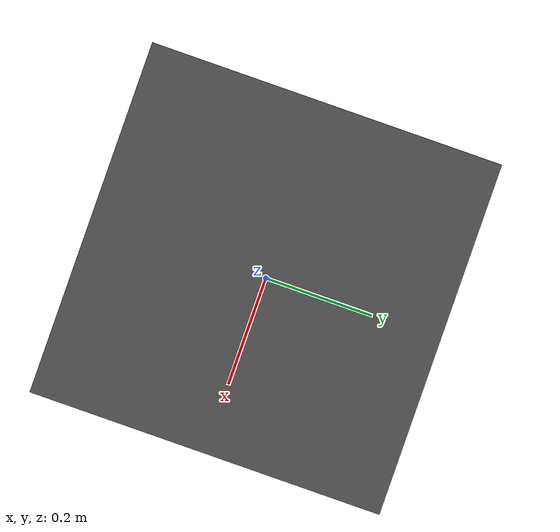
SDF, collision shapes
<sdf version='1.6'>
  <model name='omni_x8'>
    <link name='base_link'>
      <pose frame=''>0 0 0 0 -0 0</pose>
      <inertial>
        <pose frame=''>0 0 0 0 -0 0</pose>
        <mass>3.0</mass>
        <inertia>
          <ixx>0.045</ixx>
          <ixy>0</ixy>
          <ixz>0</ixz>
          <iyy>0.045</iyy>
          <iyz>0</iyz>
          <izz>0.1</izz>
        </inertia>
      </inertial>
      <collision name='base_link_inertia_collision'>
        <pose frame=''>0 0 0 0 -0 0</pose>
        <geometry>
          <box>
            <size>0.60 0.60 0.30</size>
          </box>
        </geometry>
        <surface>
          <friction>
            <ode>
              <mu>1</mu>
              <mu2>1</mu2>
            </ode>
          </friction>
          <contact>
            <ode>
              <kp>1e+8</kp>
              <kd>1</kd>
              <max_vel>0.01</max_vel>
              <min_depth>0.01</min_depth>
            </ode>
          </contact>
        </surface>
      </collision>
      <visual name='base_link_inertia_visual'>
        <pose frame=''>0 0 0 0 -0 0</pose>
        <geometry>
          <box>
            <size>0.4 0.1 0.1</size>
          </box>
        </geometry>
        <material>
          <script>
            <name>Gazebo/DarkGrey</name>
            <uri>file://media/materials/scripts/gazebo.material</uri>
          </script>
        </material>
      </visual>
      <visual name='arm_1_visual'>
        <pose>0 0 0 0 0 0.7854</pose>
        <geometry>
          <box>
            <size>0.6 0.01 0.01</size>
          </box>
        </geometry>
        <material>
          <script>
            <name>Gazebo/Red</name>
            <uri>__default__</uri>
          </script>
        </material>
      </visual>
      <visual name='arm_2_visual'>
        <pose>0 0 0 0 0 -0.7854</pose>
        <geometry>
          <box>
            <size>0.6 0.01 0.01</size>
          </box>
        </geometry>
        <material>
          <script>
            <name>Gazebo/Red</name>
            <uri>__default__</uri>
          </script>
        </material>
      </visual>
      <gravity>1</gravity>
      <velocity_decay/>
    </link>
    <link name='/imu_link'>
      <pose frame=''>0 0 0 0 -0 0</pose>
      <inertial>
        <pose frame=''>0 0 0 0 -0 0</pose>
        <mass>0.015</mass>
        <inertia>
          <ixx>1e-05</ixx>
          <ixy>0</ixy>
          <ixz>0</ixz>
          <iyy>1e-05</iyy>
          <iyz>0</iyz>
          <izz>1e-05</izz>
        </inertia>
      </inertial>
    </link>
    <joint name='/imu_joint' type='revolute'>
      <child>/imu_link</child>
      <parent>base_link</parent>
      <axis>
        <xyz>1 0 0</xyz>
        <limit>
          <lower>0</lower>
          <upper>0</upper>
          <effort>0</effort>
          <velocity>0</velocity>
        </limit>
        <dynamics>
          <spring_reference>0</spring_reference>
          <spring_stiffness>0</spring_stiffness>
        </dynamics>
        <use_parent_model_frame>1</use_parent_model_frame>
      </axis>
    </joint>

    <!-- Front right top -->
    <link name='rotor_0'>
      <pose frame=''>0.2 -0.2 0.05 0 -0.52 0.7854</pose>
      <inertial>
        <pose frame=''>0 0 0 0 -0 0</pose>
        <mass>0.005</mass>
        <inertia>
          <ixx>9.75e-07</ixx>
          <ixy>0</ixy>
          <ixz>0</ixz>
          <iyy>0.000273104</iyy>
          <iyz>0</iyz>
          <izz>0.000274004</izz>
        </inertia>
      </inertial>
      <collision name='rotor_0_collision'>
        <pose frame=''>0 0 0 0 -0 0</pose>
        <geometry>
          <cylinder>
            <length>0.005</length>
            <radius>0.09</radius>
          </cylinder>
        </geometry>
        <surface>
          <contact>
            <ode/>
          </contact>
          <friction>
            <ode/>
          </friction>
        </surface>
      </collision>
      <visual name='rotor_0_visual'>
        <pose frame=''>0 0 0 0 -0 0</pose>
        <geometry>
          <mesh>
            <scale>0.75 0.75 0.75</scale>
            <uri>model://rotors_description/meshes/iris_prop_ccw.dae</uri>
          </mesh>
        </geometry>
        <material>
          <script>
            <name>Gazebo/Blue</name>
            <uri>file://media/materials/scripts/gazebo.material</uri>
          </script>
        </material>
      </visual>
      <gravity>1</gravity>
      <velocity_decay/>
    </link>
    <joint name='rotor_0_joint' type='revolute'>
      <child>rotor_0</child>
      <parent>base_link</parent>
      <axis>
        <xyz>-0.35355 -0.35355 0.866025</xyz>
        <limit>
          <lower>-1e+16</lower>
          <upper>1e+16</upper>
        </limit>
        <dynamics>
          <spring_reference>0</spring_reference>
          <spring_stiffness>0</spring_stiffness>
        </dynamics>
        <use_parent_model_frame>1</use_parent_model_frame>
      </axis>
    </joint>

    <!-- Front left top -->
    <link name='rotor_1'>
      <pose frame=''>0.2 0.2 0.05 0 -0.52 -0.7854</pose>
      <inertial>
        <pose frame=''>0 0 0 0 -0 0</pose>
        <mass>0.005</mass>
        <inertia>
          <ixx>9.75e-07</ixx>
          <ixy>0</ixy>
          <ixz>0</ixz>
          <iyy>0.000273104</iyy>
          <iyz>0</iyz>
          <izz>0.000274004</izz>
        </inertia>
      </inertial>
      <collision name='rotor_1_collision'>
        <pose frame=''>0 0 0 0 -0 0</pose>
        <geometry>
          <cylinder>
            <length>0.005</length>
            <radius>0.09</radius>
          </cylinder>
        </geometry>
        <surface>
          <contact>
            <ode/>
          </contact>
          <friction>
            <ode/>
          </friction>
        </surface>
      </collision>
      <visual name='rotor_1_visual'>
        <pose frame=''>0 0 0 0 -0 0</pose>
        <geometry>
          <mesh>
            <scale>0.75 0.75 0.75</scale>
            <uri>model://rotors_description/meshes/iris_prop_cw.dae</uri>
          </mesh>
        </geometry>
        <material>
          <script>
            <name>Gazebo/Blue</name>
            <uri>file://media/materials/scripts/gazebo.material</uri>
          </script>
        </material>
      </visual>
      <gravity>1</gravity>
      <velocity_decay/>
    </link>
    <joint name='rotor_1_joint' type='revolute'>
      <child>rotor_1</child>
      <parent>base_link</parent>
      <axis>
        <xyz>-0.35355 0.35355 0.866025</xyz>
        <limit>
          <lower>-1e+16</lower>
          <upper>1e+16</upper>
        </limit>
        <dynamics>
          <spring_reference>0</spring_reference>
          <spring_stiffness>0</spring_stiffness>
        </dynamics>
        <use_parent_model_frame>1</use_parent_model_frame>
      </axis>
    </joint>

    <!-- Rear left top -->
    <link name='rotor_2'>
      <pose frame=''>-0.2 0.2 0.05 0 0.52 0.7854</pose>
      <inertial>
        <pose frame=''>0 0 0 0 -0 0</pose>
        <mass>0.005</mass>
        <inertia>
          <ixx>9.75e-07</ixx>
          <ixy>0</ixy>
          <ixz>0</ixz>
          <iyy>0.000273104</iyy>
          <iyz>0</iyz>
          <izz>0.000274004</izz>
        </inertia>
      </inertial>
      <collision name='rotor_2_collision'>
        <pose frame=''>0 0 0 0 -0 0</pose>
        <geometry>
          <cylinder>
            <length>0.005</length>
            <radius>0.09</radius>
          </cylinder>
        </geometry>
        <surface>
          <contact>
            <ode/>
          </contact>
          <friction>
            <ode/>
          </friction>
        </surface>
      </collision>
      <visual name='rotor_2_visual'>
        <pose frame=''>0 0 0 0 -0 0</pose>
        <geometry>
          <mesh>
            <scale>0.75 0.75 0.75</scale>
            <uri>model://rotors_description/meshes/iris_prop_ccw.dae</uri>
          </mesh>
        </geometry>
        <material>
          <script>
            <name>Gazebo/DarkGrey</name>
            <uri>file://media/materials/scripts/gazebo.material</uri>
          </script>
        </material>
      </visual>
      <gravity>1</gravity>
      <velocity_decay/>
    </link>
    <joint name='rotor_2_joint' type='revolute'>
      <child>rotor_2</child>
      <parent>base_link</parent>
      <axis>
        <xyz>0.35355 0.35355 0.866025</xyz>
        <limit>
          <lower>-1e+16</lower>
          <upper>1e+16</upper>
        </limit>
        <dynamics>
          <spring_reference>0</spring_reference>
          <spring_stiffness>0</spring_stiffness>
        </dynamics>
        <use_parent_model_frame>1</use_parent_model_frame>
      </axis>
    </joint>

    <!-- Rear right top -->
    <link name='rotor_3'>
      <pose frame=''>-0.2 -0.2 0.05 0 0.52 -0.7854</pose>
      <inertial>
        <pose frame=''>0 0 0 0 -0 0</pose>
        <mass>0.005</mass>
        <inertia>
          <ixx>9.75e-07</ixx>
          <ixy>0</ixy>
          <ixz>0</ixz>
          <iyy>0.000273104</iyy>
          <iyz>0</iyz>
          <izz>0.000274004</izz>
        </inertia>
      </inertial>
      <collision name='rotor_3_collision'>
        <pose frame=''>0 0 0 0 -0 0</pose>
        <geometry>
          <cylinder>
            <length>0.005</length>
            <radius>0.09</radius>
          </cylinder>
        </geometry>
        <surface>
          <contact>
            <ode/>
          </contact>
          <friction>
            <ode/>
          </friction>
        </surface>
      </collision>
      <visual name='rotor_3_visual'>
        <pose frame=''>0 0 0 0 -0 0</pose>
        <geometry>
          <mesh>
            <scale>0.75 0.75 0.75</scale>
            <uri>model://rotors_description/meshes/iris_prop_cw.dae</uri>
          </mesh>
        </geometry>
        <material>
          <script>
            <name>Gazebo/DarkGrey</name>
            <uri>file://media/materials/scripts/gazebo.material</uri>
          </script>
        </material>
      </visual>
      <gravity>1</gravity>
      <velocity_decay/>
    </link>
    <joint name='rotor_3_joint' type='revolute'>
      <child>rotor_3</child>
      <parent>base_link</parent>
      <axis>
        <xyz>0.3535 -0.35355 0.866025</xyz>
        <limit>
          <lower>-1e+16</lower>
          <upper>1e+16</upper>
        </limit>
        <dynamics>
          <spring_reference>0</spring_reference>
          <spring_stiffness>0</spring_stiffness>
        </dynamics>
        <use_parent_model_frame>1</use_parent_model_frame>
      </axis>
    </joint>

    <!-- Front left bottom -->
    <link name='rotor_4'>
      <pose frame=''>0.2 0.2 -0.05 0 0.52 -0.7854</pose>
      <inertial>
        <pose frame=''>0 0 0 0 -0 0</pose>
        <mass>0.005</mass>
        <inertia>
          <ixx>9.75e-07</ixx>
          <ixy>0</ixy>
          <ixz>0</ixz>
          <iyy>0.000273104</iyy>
          <iyz>0</iyz>
          <izz>0.000274004</izz>
        </inertia>
      </inertial>
      <collision name='rotor_4_collision'>
        <pose frame=''>0 0 0 0 -0 0</pose>
        <geometry>
          <cylinder>
            <length>0.005</length>
            <radius>0.09</radius>
          </cylinder>
        </geometry>
        <surface>
          <contact>
            <ode/>
          </contact>
          <friction>
            <ode/>
          </friction>
        </surface>
      </collision>
      <visual name='rotor_4_visual'>
        <pose frame=''>0 0 0 0 -0 0</pose>
        <geometry>
          <mesh>
            <scale>0.75 0.75 0.75</scale>
            <uri>model://rotors_description/meshes/iris_prop_ccw.dae</uri>
          </mesh>
        </geometry>
        <material>
          <script>
            <name>Gazebo/DarkGrey</name>
            <uri>file://media/materials/scripts/gazebo.material</uri>
          </script>
        </material>
      </visual>
      <gravity>1</gravity>
      <velocity_decay/>
    </link>
    <joint name='rotor_4_joint' type='revolute'>
      <child>rotor_4</child>
      <parent>base_link</parent>
      <axis>
        <xyz>0.35355 -0.35355 0.866025</xyz>
        <limit>
          <lower>-1e+16</lower>
          <upper>1e+16</upper>
        </limit>
        <dynamics>
          <spring_reference>0</spring_reference>
          <spring_stiffness>0</spring_stiffness>
        </dynamics>
        <use_parent_model_frame>1</use_parent_model_frame>
      </axis>
    </joint>

    <!--Front right bottom -->
    <link name='rotor_5'>
      <pose frame=''>0.2 -0.2 -0.05 0 0.52 0.7854</pose>
      <inertial>
        <pose frame=''>0 0 0 0 -0 0</pose>
        <mass>0.005</mass>
        <inertia>
          <ixx>9.75e-07</ixx>
          <ixy>0</ixy>
          <ixz>0</ixz>
          <iyy>0.000273104</iyy>
          <iyz>0</iyz>
          <izz>0.000274004</izz>
        </inertia>
      </inertial>
      <collision name='rotor_5_collision'>
        <pose frame=''>0 0 0 0 -0 0</pose>
        <geometry>
          <cylinder>
            <length>0.005</length>
            <radius>0.09</radius>
          </cylinder>
        </geometry>
        <surface>
          <contact>
            <ode/>
          </contact>
          <friction>
            <ode/>
          </friction>
        </surface>
      </collision>
      <visual name='rotor_5_visual'>
        <pose frame=''>0 0 0 0 -0 0</pose>
        <geometry>
          <mesh>
            <scale>0.75 0.75 0.75</scale>
            <uri>model://rotors_description/meshes/iris_prop_cw.dae</uri>
          </mesh>
        </geometry>
        <material>
          <script>
            <name>Gazebo/DarkGrey</name>
            <uri>file://media/materials/scripts/gazebo.material</uri>
          </script>
        </material>
      </visual>
      <gravity>1</gravity>
      <velocity_decay/>
    </link>
    <joint name='rotor_5_joint' type='revolute'>
      <child>rotor_5</child>
      <parent>base_link</parent>
      <axis>
        <xyz>0.35355 0.35355 0.866025</xyz>
        <limit>
          <lower>-1e+16</lower>
          <upper>1e+16</upper>
        </limit>
        <dynamics>
          <spring_reference>0</spring_reference>
          <spring_stiffness>0</spring_stiffness>
        </dynamics>
        <use_parent_model_frame>1</use_parent_model_frame>
      </axis>
    </joint>

    <!-- Rear right bottom -->
    <link name='rotor_6'>
      <pose frame=''>-0.2 -0.2 -0.05 0 -0.52 -0.7854</pose>
      <inertial>
        <pose frame=''>0 0 0 0 -0 0</pose>
        <mass>0.005</mass>
        <inertia>
          <ixx>9.75e-07</ixx>
          <ixy>0</ixy>
          <ixz>0</ixz>
          <iyy>0.000273104</iyy>
          <iyz>0</iyz>
          <izz>0.000274004</izz>
        </inertia>
      </inertial>
      <collision name='rotor_6_collision'>
        <pose frame=''>0 0 0 0 -0 0</pose>
        <geometry>
          <cylinder>
            <length>0.005</length>
            <radius>0.09</radius>
          </cylinder>
        </geometry>
        <surface>
          <contact>
            <ode/>
          </contact>
          <friction>
            <ode/>
          </friction>
        </surface>
      </collision>
      <visual name='rotor_6_visual'>
        <pose frame=''>0 0 0 0 -0 0</pose>
        <geometry>
          <mesh>
            <scale>0.75 0.75 0.75</scale>
            <uri>model://rotors_description/meshes/iris_prop_ccw.dae</uri>
          </mesh>
        </geometry>
        <material>
          <script>
            <name>Gazebo/DarkGrey</name>
            <uri>file://media/materials/scripts/gazebo.material</uri>
          </script>
        </material>
      </visual>
      <gravity>1</gravity>
      <velocity_decay/>
    </link>
    <joint name='rotor_6_joint' type='revolute'>
      <child>rotor_6</child>
      <parent>base_link</parent>
      <axis>
        <xyz>-0.35355 0.35355 0.866025</xyz>
        <limit>
          <lower>-1e+16</lower>
          <upper>1e+16</upper>
        </limit>
        <dynamics>
          <spring_reference>0</spring_reference>
          <spring_stiffness>0</spring_stiffness>
        </dynamics>
        <use_parent_model_frame>1</use_parent_model_frame>
      </axis>
    </joint>

    <!-- Rear left bottom -->
    <link name='rotor_7'>
      <pose frame=''>-0.2 0.2 -0.05 0 -0.52 0.7854</pose>
      <inertial>
        <pose frame=''>0 0 0 0 -0 0</pose>
        <mass>0.005</mass>
        <inertia>
          <ixx>9.75e-07</ixx>
          <ixy>0</ixy>
          <ixz>0</ixz>
          <iyy>0.000273104</iyy>
          <iyz>0</iyz>
          <izz>0.000274004</izz>
        </inertia>
      </inertial>
      <collision name='rotor_7_collision'>
        <pose frame=''>0 0 0 0 -0 0</pose>
        <geometry>
          <cylinder>
            <length>0.005</length>
            <radius>0.09</radius>
          </cylinder>
        </geometry>
        <surface>
          <contact>
            <ode/>
          </contact>
          <friction>
            <ode/>
          </friction>
        </surface>
      </collision>
      <visual name='rotor_7_visual'>
        <pose frame=''>0 0 0 0 -0 0</pose>
        <geometry>
          <mesh>
            <scale>0.75 0.75 0.75</scale>
            <uri>model://rotors_description/meshes/iris_prop_cw.dae</uri>
          </mesh>
        </geometry>
        <material>
          <script>
            <name>Gazebo/DarkGrey</name>
            <uri>file://media/materials/scripts/gazebo.material</uri>
          </script>
        </material>
      </visual>
      <gravity>1</gravity>
      <velocity_decay/>
    </link>
    <joint name='rotor_7_joint' type='revolute'>
      <child>rotor_7</child>
      <parent>base_link</parent>
      <axis>
        <xyz>-0.35355 -0.35355 0.866025</xyz>
        <limit>
          <lower>-1e+16</lower>
          <upper>1e+16</upper>
        </limit>
        <dynamics>
          <spring_reference>0</spring_reference>
          <spring_stiffness>0</spring_stiffness>
        </dynamics>
        <use_parent_model_frame>1</use_parent_model_frame>
      </axis>
    </joint>

    <plugin name='rosbag' filename='librotors_gazebo_multirotor_base_plugin.so'>
      <robotNamespace/>
      <linkName>base_link</linkName>
      <rotorVelocitySlowdownSim>10</rotorVelocitySlowdownSim>
    </plugin>
    <plugin name='front_right_top_motor_model' filename='librotors_gazebo_motor_model.so'>
      <robotNamespace/>
      <jointName>rotor_0_joint</jointName>
      <linkName>rotor_0</linkName>
      <turningDirection>ccw</turningDirection>
      <timeConstantUp>0.0125</timeConstantUp>
      <timeConstantDown>0.025</timeConstantDown>
      <maxRotVelocity>1100</maxRotVelocity>
      <motorConstant>8.54858e-06</motorConstant>
      <momentConstant>0.06</momentConstant>
      <commandSubTopic>/gazebo/command/motor_speed</commandSubTopic>
      <motorNumber>0</motorNumber>
      <rotorDragCoefficient>0.000806428</rotorDragCoefficient>
      <rollingMomentCoefficient>1e-06</rollingMomentCoefficient>
      <motorSpeedPubTopic>/motor_speed/0</motorSpeedPubTopic>
      <rotorVelocitySlowdownSim>10</rotorVelocitySlowdownSim>
    </plugin>
    <plugin name='front_left_top_motor_model' filename='librotors_gazebo_motor_model.so'>
      <robotNamespace/>
      <jointName>rotor_1_joint</jointName>
      <linkName>rotor_1</linkName>
      <turningDirection>cw</turningDirection>
      <timeConstantUp>0.0125</timeConstantUp>
      <timeConstantDown>0.025</timeConstantDown>
      <maxRotVelocity>1100</maxRotVelocity>
      <motorConstant>8.54858e-06</motorConstant>
      <momentConstant>0.06</momentConstant>
      <commandSubTopic>/gazebo/command/motor_speed</commandSubTopic>
      <motorNumber>1</motorNumber>
      <rotorDragCoefficient>0.000806428</rotorDragCoefficient>
      <rollingMomentCoefficient>1e-06</rollingMomentCoefficient>
      <motorSpeedPubTopic>/motor_speed/1</motorSpeedPubTopic>
      <rotorVelocitySlowdownSim>10</rotorVelocitySlowdownSim>
    </plugin>
    <plugin name='rear_left_top_motor_model' filename='librotors_gazebo_motor_model.so'>
      <robotNamespace/>
      <jointName>rotor_2_joint</jointName>
      <linkName>rotor_2</linkName>
      <turningDirection>ccw</turningDirection>
      <timeConstantUp>0.0125</timeConstantUp>
      <timeConstantDown>0.025</timeConstantDown>
      <maxRotVelocity>1100</maxRotVelocity>
      <motorConstant>8.54858e-06</motorConstant>
      <momentConstant>0.06</momentConstant>
      <commandSubTopic>/gazebo/command/motor_speed</commandSubTopic>
      <motorNumber>2</motorNumber>
      <rotorDragCoefficient>0.000806428</rotorDragCoefficient>
      <rollingMomentCoefficient>1e-06</rollingMomentCoefficient>
      <motorSpeedPubTopic>/motor_speed/2</motorSpeedPubTopic>
      <rotorVelocitySlowdownSim>10</rotorVelocitySlowdownSim>
    </plugin>
    <plugin name='rear_right_top_motor_model' filename='librotors_gazebo_motor_model.so'>
      <robotNamespace/>
      <jointName>rotor_3_joint</jointName>
      <linkName>rotor_3</linkName>
      <turningDirection>cw</turningDirection>
      <timeConstantUp>0.0125</timeConstantUp>
      <timeConstantDown>0.025</timeConstantDown>
      <maxRotVelocity>1100</maxRotVelocity>
      <motorConstant>8.54858e-06</motorConstant>
      <momentConstant>0.06</momentConstant>
      <commandSubTopic>/gazebo/command/motor_speed</commandSubTopic>
      <motorNumber>3</motorNumber>
      <rotorDragCoefficient>0.000806428</rotorDragCoefficient>
      <rollingMomentCoefficient>1e-06</rollingMomentCoefficient>
      <motorSpeedPubTopic>/motor_speed/3</motorSpeedPubTopic>
      <rotorVelocitySlowdownSim>10</rotorVelocitySlowdownSim>
    </plugin>
    <plugin name='front_left_bottom_motor_model' filename='librotors_gazebo_motor_model.so'>
      <robotNamespace/>
      <jointName>rotor_4_joint</jointName>
      <linkName>rotor_4</linkName>
      <turningDirection>ccw</turningDirection>
      <timeConstantUp>0.0125</timeConstantUp>
      <timeConstantDown>0.025</timeConstantDown>
      <maxRotVelocity>1100</maxRotVelocity>
      <motorConstant>8.54858e-06</motorConstant>
      <momentConstant>0.06</momentConstant>
      <commandSubTopic>/gazebo/command/motor_speed</commandSubTopic>
      <motorNumber>4</motorNumber>
      <rotorDragCoefficient>0.000806428</rotorDragCoefficient>
      <rollingMomentCoefficient>1e-06</rollingMomentCoefficient>
      <motorSpeedPubTopic>/motor_speed/4</motorSpeedPubTopic>
      <rotorVelocitySlowdownSim>10</rotorVelocitySlowdownSim>
    </plugin>
    <plugin name='front_right_bottom_motor_model' filename='librotors_gazebo_motor_model.so'>
      <robotNamespace/>
      <jointName>rotor_5_joint</jointName>
      <linkName>rotor_5</linkName>
      <turningDirection>cw</turningDirection>
      <timeConstantUp>0.0125</timeConstantUp>
      <timeConstantDown>0.025</timeConstantDown>
      <maxRotVelocity>1100</maxRotVelocity>
      <motorConstant>8.54858e-06</motorConstant>
      <momentConstant>0.06</momentConstant>
      <commandSubTopic>/gazebo/command/motor_speed</commandSubTopic>
      <motorNumber>5</motorNumber>
      <rotorDragCoefficient>0.000806428</rotorDragCoefficient>
      <rollingMomentCoefficient>1e-06</rollingMomentCoefficient>
      <motorSpeedPubTopic>/motor_speed/5</motorSpeedPubTopic>
      <rotorVelocitySlowdownSim>10</rotorVelocitySlowdownSim>
    </plugin>
    <plugin name='rear_right_bottom_motor_model' filename='librotors_gazebo_motor_model.so'>
      <robotNamespace/>
      <jointName>rotor_6_joint</jointName>
      <linkName>rotor_6</linkName>
      <turningDirection>ccw</turningDirection>
      <timeConstantUp>0.0125</timeConstantUp>
      <timeConstantDown>0.025</timeConstantDown>
      <maxRotVelocity>1100</maxRotVelocity>
      <motorConstant>8.54858e-06</motorConstant>
      <momentConstant>0.06</momentConstant>
      <commandSubTopic>/gazebo/command/motor_speed</commandSubTopic>
      <motorNumber>6</motorNumber>
      <rotorDragCoefficient>0.000806428</rotorDragCoefficient>
      <rollingMomentCoefficient>1e-06</rollingMomentCoefficient>
      <motorSpeedPubTopic>/motor_speed/6</motorSpeedPubTopic>
      <rotorVelocitySlowdownSim>10</rotorVelocitySlowdownSim>
    </plugin>
    <plugin name='rear_left_bottom_motor_model' filename='librotors_gazebo_motor_model.so'>
      <robotNamespace/>
      <jointName>rotor_7_joint</jointName>
      <linkName>rotor_7</linkName>
      <turningDirection>cw</turningDirection>
      <timeConstantUp>0.0125</timeConstantUp>
      <timeConstantDown>0.025</timeConstantDown>
      <maxRotVelocity>1100</maxRotVelocity>
      <motorConstant>8.54858e-06</motorConstant>
      <momentConstant>0.06</momentConstant>
      <commandSubTopic>/gazebo/command/motor_speed</commandSubTopic>
      <motorNumber>7</motorNumber>
      <rotorDragCoefficient>0.000806428</rotorDragCoefficient>
      <rollingMomentCoefficient>1e-06</rollingMomentCoefficient>
      <motorSpeedPubTopic>/motor_speed/7</motorSpeedPubTopic>
      <rotorVelocitySlowdownSim>10</rotorVelocitySlowdownSim>
    </plugin>
    <plugin name='mavlink_interface' filename='librotors_gazebo_mavlink_interface.so'>
      <robotNamespace/>
      <imuSubTopic>/imu</imuSubTopic>
      <mavlink_addr>INADDR_ANY</mavlink_addr>
      <mavlink_udp_port>14560</mavlink_udp_port>
      <motorSpeedCommandPubTopic>/gazebo/command/motor_speed</motorSpeedCommandPubTopic>
      <control_channels>
        <channel name='rotor0'>
          <input_index>0</input_index>
          <joint_name>rotor_0_joint</joint_name>
          <input_offset>0</input_offset>
          <input_scaling>1000</input_scaling>
          <zero_position_disarmed>0</zero_position_disarmed>
          <zero_position_armed>100</zero_position_armed>
          <joint_control_type>velocity</joint_control_type>
        </channel>
        <channel name='rotor1'>
          <input_index>1</input_index>
          <joint_name>rotor_1_joint</joint_name>
          <input_offset>0</input_offset>
          <input_scaling>1000</input_scaling>
          <zero_position_disarmed>0</zero_position_disarmed>
          <zero_position_armed>100</zero_position_armed>
          <joint_control_type>velocity</joint_control_type>
        </channel>
        <channel name='rotor2'>
          <input_index>2</input_index>
          <joint_name>rotor_2_joint</joint_name>
          <input_offset>0</input_offset>
          <input_scaling>1000</input_scaling>
          <zero_position_disarmed>0</zero_position_disarmed>
          <zero_position_armed>100</zero_position_armed>
          <joint_control_type>velocity</joint_control_type>
        </channel>
        <channel name='rotor3'>
          <input_index>3</input_index>
          <joint_name>rotor_3_joint</joint_name>
          <input_offset>0</input_offset>
          <input_scaling>1000</input_scaling>
          <zero_position_disarmed>0</zero_position_disarmed>
          <zero_position_armed>100</zero_position_armed>
          <joint_control_type>velocity</joint_control_type>
        </channel>
        <channel name='rotor4'>
          <input_index>4</input_index>
          <joint_name>rotor_4_joint</joint_name>
          <input_offset>0</input_offset>
          <input_scaling>1000</input_scaling>
          <zero_position_disarmed>0</zero_position_disarmed>
          <zero_position_armed>100</zero_position_armed>
          <joint_control_type>velocity</joint_control_type>
        </channel>
        <channel name='rotor5'>
          <input_index>5</input_index>
          <joint_name>rotor_5_joint</joint_name>
          <input_offset>0</input_offset>
          <input_scaling>1000</input_scaling>
          <zero_position_disarmed>0</zero_position_disarmed>
          <zero_position_armed>100</zero_position_armed>
          <joint_control_type>velocity</joint_control_type>
        </channel>
        <channel name='rotor6'>
          <input_index>6</input_index>
          <joint_name>rotor_6_joint</joint_name>
          <input_offset>0</input_offset>
          <input_scaling>1000</input_scaling>
          <zero_position_disarmed>0</zero_position_disarmed>
          <zero_position_armed>100</zero_position_armed>
          <joint_control_type>velocity</joint_control_type>
        </channel>
        <channel name='rotor7'>
          <input_index>7</input_index>
          <joint_name>rotor_7_joint</joint_name>
          <input_offset>0</input_offset>
          <input_scaling>1000</input_scaling>
          <zero_position_disarmed>0</zero_position_disarmed>
          <zero_position_armed>100</zero_position_armed>
          <joint_control_type>velocity</joint_control_type>
        </channel>
      </control_channels>
    </plugin>
    <static>0</static>
    <plugin name='rotors_gazebo_imu_plugin' filename='librotors_gazebo_imu_plugin.so'>
      <robotNamespace/>
      <linkName>/imu_link</linkName>
      <imuTopic>/imu</imuTopic>
      <gyroscopeNoiseDensity>0.0003394</gyroscopeNoiseDensity>
      <gyroscopeRandomWalk>3.8785e-05</gyroscopeRandomWalk>
      <gyroscopeBiasCorrelationTime>1000.0</gyroscopeBiasCorrelationTime>
      <gyroscopeTurnOnBiasSigma>0.0087</gyroscopeTurnOnBiasSigma>
      <accelerometerNoiseDensity>0.004</accelerometerNoiseDensity>
      <accelerometerRandomWalk>0.006</accelerometerRandomWalk>
      <accelerometerBiasCorrelationTime>300.0</accelerometerBiasCorrelationTime>
      <accelerometerTurnOnBiasSigma>0.196</accelerometerTurnOnBiasSigma>
    </plugin>
  </model>
</sdf>
